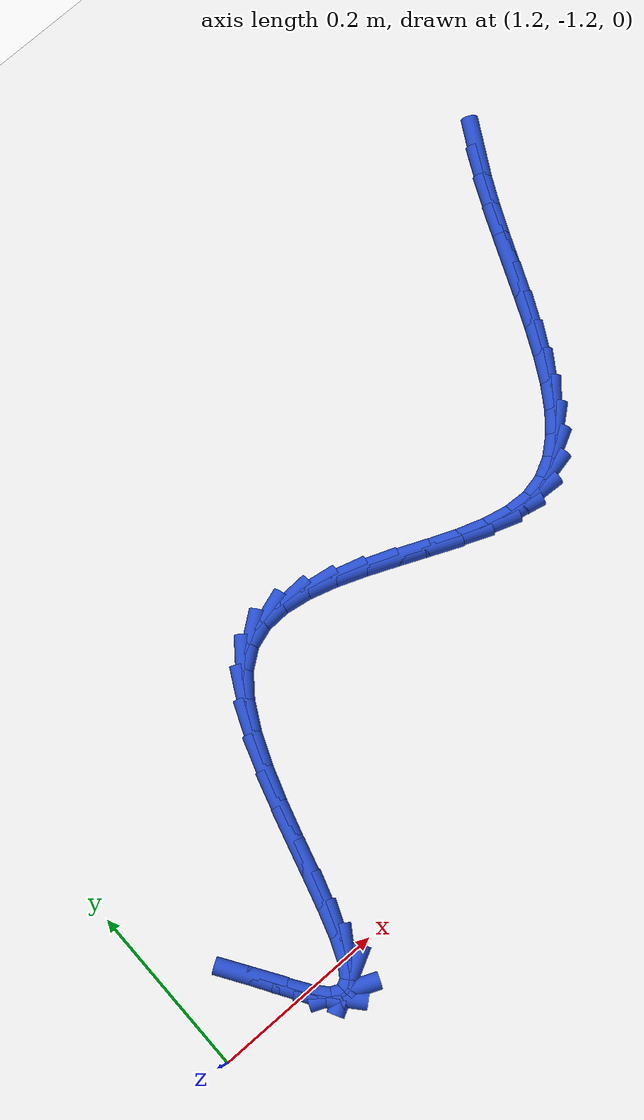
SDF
<sdf version="1.6">
 <world name="default">
  <model name="ground_plane">
   <static>1</static>
   <link name="link">
    <collision name="collision">
     <geometry><plane><normal>0 0 1</normal><size>100 100</size></plane></geometry>
     <surface><friction><ode><mu>100</mu><mu2>50</mu2></ode></friction></surface>
    </collision>
    <visual name="visual">
     <cast_shadows>0</cast_shadows>
     <geometry><plane><normal>0 0 1</normal><size>100 100</size></plane></geometry>
     <material>
      <script><uri>file://media/materials/scripts/gazebo.material</uri><name>Gazebo/WhiteGlow</name></script>
     </material>
    </visual>
   </link>
  </model>
  <model name="line">
   <link name="link_136">
    <pose>2.0787894992408216 -0.6108405569215617 0.01 0 1.57 1.0655286409629405</pose>
    <collision name="collision">
     <geometry><cylinder><radius>0.01</radius><length>0.08</length></cylinder></geometry>
    </collision>
    <visual name="visual">
     <material>
      <script><name>Gazebo/Blue</name><uri>file://media/materials/scripts/gazebo.material</uri></script>
     </material>
     <geometry><cylinder><radius>0.01</radius><length>0.08</length></cylinder></geometry>
    </visual>
   </link>
   <link name="link_137">
    <pose>2.062147831022804 -0.6409251707788344 0.01 0 1.57 1.1147313853682053</pose>
    <collision name="collision">
     <geometry><cylinder><radius>0.01</radius><length>0.08</length></cylinder></geometry>
    </collision>
    <visual name="visual">
     <material>
      <script><name>Gazebo/Blue</name><uri>file://media/materials/scripts/gazebo.material</uri></script>
     </material>
     <geometry><cylinder><radius>0.01</radius><length>0.08</length></cylinder></geometry>
    </visual>
   </link>
   <link name="link_138">
    <pose>2.046391463369008 -0.6730444933009648 0.01 0 1.57 1.1517351304528312</pose>
    <collision name="collision">
     <geometry><cylinder><radius>0.01</radius><length>0.08</length></cylinder></geometry>
    </collision>
    <visual name="visual">
     <material>
      <script><name>Gazebo/Blue</name><uri>file://media/materials/scripts/gazebo.material</uri></script>
     </material>
     <geometry><cylinder><radius>0.01</radius><length>0.08</length></cylinder></geometry>
    </visual>
   </link>
   <link name="link_139">
    <pose>2.0314053013502265 -0.7066874683574484 0.01 0 1.57 1.170623632182891</pose>
    <collision name="collision">
     <geometry><cylinder><radius>0.01</radius><length>0.08</length></cylinder></geometry>
    </collision>
    <visual name="visual">
     <material>
      <script><name>Gazebo/Blue</name><uri>file://media/materials/scripts/gazebo.material</uri></script>
     </material>
     <geometry><cylinder><radius>0.01</radius><length>0.08</length></cylinder></geometry>
    </visual>
   </link>
   <link name="link_140">
    <pose>2.0168631249725815 -0.7410663961493406 0.01 0 1.57 1.1729906849140792</pose>
    <collision name="collision">
     <geometry><cylinder><radius>0.01</radius><length>0.08</length></cylinder></geometry>
    </collision>
    <visual name="visual">
     <material>
      <script><name>Gazebo/Blue</name><uri>file://media/materials/scripts/gazebo.material</uri></script>
     </material>
     <geometry><cylinder><radius>0.01</radius><length>0.08</length></cylinder></geometry>
    </visual>
   </link>
   <link name="link_141">
    <pose>2.002438598368196 -0.7753934250444298 0.01 0 1.57 1.1588238868954397</pose>
    <collision name="collision">
     <geometry><cylinder><radius>0.01</radius><length>0.08</length></cylinder></geometry>
    </collision>
    <visual name="visual">
     <material>
      <script><name>Gazebo/Blue</name><uri>file://media/materials/scripts/gazebo.material</uri></script>
     </material>
     <geometry><cylinder><radius>0.01</radius><length>0.08</length></cylinder></geometry>
    </visual>
   </link>
   <link name="link_142">
    <pose>1.9878053856691917 -0.8088807034105067 0.01 0 1.57 1.12645489366024</pose>
    <collision name="collision">
     <geometry><cylinder><radius>0.01</radius><length>0.08</length></cylinder></geometry>
    </collision>
    <visual name="visual">
     <material>
      <script><name>Gazebo/Blue</name><uri>file://media/materials/scripts/gazebo.material</uri></script>
     </material>
     <geometry><cylinder><radius>0.01</radius><length>0.08</length></cylinder></geometry>
    </visual>
   </link>
   <link name="link_143">
    <pose>1.9726371510076925 -0.8407403796153622 0.01 0 1.57 1.0722585698978082</pose>
    <collision name="collision">
     <geometry><cylinder><radius>0.01</radius><length>0.08</length></cylinder></geometry>
    </collision>
    <visual name="visual">
     <material>
      <script><name>Gazebo/Blue</name><uri>file://media/materials/scripts/gazebo.material</uri></script>
     </material>
     <geometry><cylinder><radius>0.01</radius><length>0.08</length></cylinder></geometry>
    </visual>
   </link>
   <link name="link_144">
    <pose>1.9566075585158202 -0.8701846020267858 0.01 0 1.57 0.9901282950944299</pose>
    <collision name="collision">
     <geometry><cylinder><radius>0.01</radius><length>0.08</length></cylinder></geometry>
    </collision>
    <visual name="visual">
     <material>
      <script><name>Gazebo/Blue</name><uri>file://media/materials/scripts/gazebo.material</uri></script>
     </material>
     <geometry><cylinder><radius>0.01</radius><length>0.08</length></cylinder></geometry>
    </visual>
   </link>
   <link name="link_145">
    <pose>1.939390272325699 -0.8964255190125686 0.01 0 1.57 0.8710434805636414</pose>
    <collision name="collision">
     <geometry><cylinder><radius>0.01</radius><length>0.08</length></cylinder></geometry>
    </collision>
    <visual name="visual">
     <material>
      <script><name>Gazebo/Blue</name><uri>file://media/materials/scripts/gazebo.material</uri></script>
     </material>
     <geometry><cylinder><radius>0.01</radius><length>0.08</length></cylinder></geometry>
    </visual>
   </link>
   <link name="link_146">
    <pose>1.9206589565694503 -0.9186752789405002 0.01 0 1.57 0.7040655777040927</pose>
    <collision name="collision">
     <geometry><cylinder><radius>0.01</radius><length>0.08</length></cylinder></geometry>
    </collision>
    <visual name="visual">
     <material>
      <script><name>Gazebo/Blue</name><uri>file://media/materials/scripts/gazebo.material</uri></script>
     </material>
     <geometry><cylinder><radius>0.01</radius><length>0.08</length></cylinder></geometry>
    </visual>
   </link>
   <link name="link_147">
    <pose>1.9000872753791969 -0.9361460301783712 0.01 0 1.57 0.4822823829458967</pose>
    <collision name="collision">
     <geometry><cylinder><radius>0.01</radius><length>0.08</length></cylinder></geometry>
    </collision>
    <visual name="visual">
     <material>
      <script><name>Gazebo/Blue</name><uri>file://media/materials/scripts/gazebo.material</uri></script>
     </material>
     <geometry><cylinder><radius>0.01</radius><length>0.08</length></cylinder></geometry>
    </visual>
   </link>
   <link name="link_148">
    <pose>1.8773488928870625 -0.948049921093971 0.01 0 1.57 0.2164890102528162</pose>
    <collision name="collision">
     <geometry><cylinder><radius>0.01</radius><length>0.08</length></cylinder></geometry>
    </collision>
    <visual name="visual">
     <material>
      <script><name>Gazebo/Blue</name><uri>file://media/materials/scripts/gazebo.material</uri></script>
     </material>
     <geometry><cylinder><radius>0.01</radius><length>0.08</length></cylinder></geometry>
    </visual>
   </link>
   <link name="link_149">
    <pose>1.8521175127949647 -0.9535992033325917 0.01 0 1.57 -0.04096147280496312</pose>
    <collision name="collision">
     <geometry><cylinder><radius>0.01</radius><length>0.08</length></cylinder></geometry>
    </collision>
    <visual name="visual">
     <material>
      <script><name>Gazebo/Blue</name><uri>file://media/materials/scripts/gazebo.material</uri></script>
     </material>
     <geometry><cylinder><radius>0.01</radius><length>0.08</length></cylinder></geometry>
    </visual>
   </link>
   <link name="link_150">
    <pose>1.824239447084865 -0.9524566376156506 0.01 0 1.57 -0.218581777469119</pose>
    <collision name="collision">
     <geometry><cylinder><radius>0.01</radius><length>0.08</length></cylinder></geometry>
    </collision>
    <visual name="visual">
     <material>
      <script><name>Gazebo/Blue</name><uri>file://media/materials/scripts/gazebo.material</uri></script>
     </material>
     <geometry><cylinder><radius>0.01</radius><length>0.08</length></cylinder></geometry>
    </visual>
   </link>
   <link name="link_151">
    <pose>1.7941293065921071 -0.9457682494959878 0.01 0 1.57 -0.3268277697426285</pose>
    <collision name="collision">
     <geometry><cylinder><radius>0.01</radius><length>0.08</length></cylinder></geometry>
    </collision>
    <visual name="visual">
     <material>
      <script><name>Gazebo/Blue</name><uri>file://media/materials/scripts/gazebo.material</uri></script>
     </material>
     <geometry><cylinder><radius>0.01</radius><length>0.08</length></cylinder></geometry>
    </visual>
   </link>
   <link name="link_152">
    <pose>1.762318490188261 -0.934984882292367 0.01 0 1.57 -0.38664603583846685</pose>
    <collision name="collision">
     <geometry><cylinder><radius>0.01</radius><length>0.08</length></cylinder></geometry>
    </collision>
    <visual name="visual">
     <material>
      <script><name>Gazebo/Blue</name><uri>file://media/materials/scripts/gazebo.material</uri></script>
     </material>
     <geometry><cylinder><radius>0.01</radius><length>0.08</length></cylinder></geometry>
    </visual>
   </link>
   <link name="link_153">
    <pose>1.7293383967448963 -0.9215573793235503 0.01 0 1.57 -0.4102345584589909</pose>
    <collision name="collision">
     <geometry><cylinder><radius>0.01</radius><length>0.08</length></cylinder></geometry>
    </collision>
    <visual name="visual">
     <material>
      <script><name>Gazebo/Blue</name><uri>file://media/materials/scripts/gazebo.material</uri></script>
     </material>
     <geometry><cylinder><radius>0.01</radius><length>0.08</length></cylinder></geometry>
    </visual>
   </link>
   <link name="link_154">
    <pose>1.6957204251335818 -0.9069365839083006 0.01 0 1.57 -0.40263273112197173</pose>
    <collision name="collision">
     <geometry><cylinder><radius>0.01</radius><length>0.08</length></cylinder></geometry>
    </collision>
    <visual name="visual">
     <material>
      <script><name>Gazebo/Blue</name><uri>file://media/materials/scripts/gazebo.material</uri></script>
     </material>
     <geometry><cylinder><radius>0.01</radius><length>0.08</length></cylinder></geometry>
    </visual>
   </link>
   <link name="link_155">
    <pose>1.6619959742258867 -0.8925733393653804 0.01 0 1.57 -0.3631739973338399</pose>
    <collision name="collision">
     <geometry><cylinder><radius>0.01</radius><length>0.08</length></cylinder></geometry>
    </collision>
    <visual name="visual">
     <material>
      <script><name>Gazebo/Blue</name><uri>file://media/materials/scripts/gazebo.material</uri></script>
     </material>
     <geometry><cylinder><radius>0.01</radius><length>0.08</length></cylinder></geometry>
    </visual>
   </link>
   <link name="link_156">
    <pose>1.6286964428933834 -0.879918489013554 0.01 0 1.57 -0.28556485219659994</pose>
    <collision name="collision">
     <geometry><cylinder><radius>0.01</radius><length>0.08</length></cylinder></geometry>
    </collision>
    <visual name="visual">
     <material>
      <script><name>Gazebo/Blue</name><uri>file://media/materials/scripts/gazebo.material</uri></script>
     </material>
     <geometry><cylinder><radius>0.01</radius><length>0.08</length></cylinder></geometry>
    </visual>
   </link>
   <link name="link_157">
    <pose>1.5963532300076388 -0.8704228761715825 0.01 0 1.57 -0.1570322594020541</pose>
    <collision name="collision">
     <geometry><cylinder><radius>0.01</radius><length>0.08</length></cylinder></geometry>
    </collision>
    <visual name="visual">
     <material>
      <script><name>Gazebo/Blue</name><uri>file://media/materials/scripts/gazebo.material</uri></script>
     </material>
     <geometry><cylinder><radius>0.01</radius><length>0.08</length></cylinder></geometry>
    </visual>
   </link>
   <link name="link_158">
    <pose>1.5654977344402232 -0.8655373441582294 0.01 0 1.57 0.040738187682749505</pose>
    <collision name="collision">
     <geometry><cylinder><radius>0.01</radius><length>0.08</length></cylinder></geometry>
    </collision>
    <visual name="visual">
     <material>
      <script><name>Gazebo/Blue</name><uri>file://media/materials/scripts/gazebo.material</uri></script>
     </material>
     <geometry><cylinder><radius>0.01</radius><length>0.08</length></cylinder></geometry>
    </visual>
   </link>
   <link name="link_159">
    <pose>1.5366613550627064 -0.8667127362922574 0.01 0 1.57 0.3191874650321774</pose>
    <collision name="collision">
     <geometry><cylinder><radius>0.01</radius><length>0.08</length></cylinder></geometry>
    </collision>
    <visual name="visual">
     <material>
      <script><name>Gazebo/Blue</name><uri>file://media/materials/scripts/gazebo.material</uri></script>
     </material>
     <geometry><cylinder><radius>0.01</radius><length>0.08</length></cylinder></geometry>
    </visual>
   </link>
   <link name="link_160">
    <pose>1.5103754907466576 -0.8753998958924294 0.01 0 1.57 0.6461919423775032</pose>
    <collision name="collision">
     <geometry><cylinder><radius>0.01</radius><length>0.08</length></cylinder></geometry>
    </collision>
    <visual name="visual">
     <material>
      <script><name>Gazebo/Blue</name><uri>file://media/materials/scripts/gazebo.material</uri></script>
     </material>
     <geometry><cylinder><radius>0.01</radius><length>0.08</length></cylinder></geometry>
    </visual>
   </link>
   <link name="link_161">
    <pose>1.4871368828816476 -0.8929267546490982 0.01 0 1.57 0.9081546072924416</pose>
    <collision name="collision">
     <geometry><cylinder><radius>0.01</radius><length>0.08</length></cylinder></geometry>
    </collision>
    <visual name="visual">
     <material>
      <script><name>Gazebo/Blue</name><uri>file://media/materials/scripts/gazebo.material</uri></script>
     </material>
     <geometry><cylinder><radius>0.01</radius><length>0.08</length></cylinder></geometry>
    </visual>
   </link>
   <link name="link_162">
    <pose>1.4669335262580045 -0.9188169910479876 0.01 0 1.57 1.0740508527025323</pose>
    <collision name="collision">
     <geometry><cylinder><radius>0.01</radius><length>0.08</length></cylinder></geometry>
    </collision>
    <visual name="visual">
     <material>
      <script><name>Gazebo/Blue</name><uri>file://media/materials/scripts/gazebo.material</uri></script>
     </material>
     <geometry><cylinder><radius>0.01</radius><length>0.08</length></cylinder></geometry>
    </visual>
   </link>
   <link name="link_163">
    <pose>1.4493667499611043 -0.9512229862760896 0.01 0 1.57 1.178186737990009</pose>
    <collision name="collision">
     <geometry><cylinder><radius>0.01</radius><length>0.08</length></cylinder></geometry>
    </collision>
    <visual name="visual">
     <material>
      <script><name>Gazebo/Blue</name><uri>file://media/materials/scripts/gazebo.material</uri></script>
     </material>
     <geometry><cylinder><radius>0.01</radius><length>0.08</length></cylinder></geometry>
    </visual>
   </link>
   <link name="link_164">
    <pose>1.4340282194858045 -0.9882628499121193 0.01 0 1.57 1.2432967799028332</pose>
    <collision name="collision">
     <geometry><cylinder><radius>0.01</radius><length>0.08</length></cylinder></geometry>
    </collision>
    <visual name="visual">
     <material>
      <script><name>Gazebo/Blue</name><uri>file://media/materials/scripts/gazebo.material</uri></script>
     </material>
     <geometry><cylinder><radius>0.01</radius><length>0.08</length></cylinder></geometry>
    </visual>
   </link>
   <link name="link_165">
    <pose>1.4205096003269622 -1.028054691534791 0.01 0 1.57 1.2814060919413606</pose>
    <collision name="collision">
     <geometry><cylinder><radius>0.01</radius><length>0.08</length></cylinder></geometry>
    </collision>
    <visual name="visual">
     <material>
      <script><name>Gazebo/Blue</name><uri>file://media/materials/scripts/gazebo.material</uri></script>
     </material>
     <geometry><cylinder><radius>0.01</radius><length>0.08</length></cylinder></geometry>
    </visual>
   </link>
   <link name="link_166">
    <pose>1.4084025579794341 -1.0687166207228187 0.01 0 1.57 1.2977463537881087</pose>
    <collision name="collision">
     <geometry><cylinder><radius>0.01</radius><length>0.08</length></cylinder></geometry>
    </collision>
    <visual name="visual">
     <material>
      <script><name>Gazebo/Blue</name><uri>file://media/materials/scripts/gazebo.material</uri></script>
     </material>
     <geometry><cylinder><radius>0.01</radius><length>0.08</length></cylinder></geometry>
    </visual>
   </link>
   <link name="link_167">
    <pose>1.3972987579380776 -1.108366747054917 0.01 0 1.57 1.2923192430748731</pose>
    <collision name="collision">
     <geometry><cylinder><radius>0.01</radius><length>0.08</length></cylinder></geometry>
    </collision>
    <visual name="visual">
     <material>
      <script><name>Gazebo/Blue</name><uri>file://media/materials/scripts/gazebo.material</uri></script>
     </material>
     <geometry><cylinder><radius>0.01</radius><length>0.08</length></cylinder></geometry>
    </visual>
   </link>
   <link name="link_168">
    <pose>1.3867898656977498 -1.1451231801097996 0.01 0 1.57 1.2585866657051392</pose>
    <collision name="collision">
     <geometry><cylinder><radius>0.01</radius><length>0.08</length></cylinder></geometry>
    </collision>
    <visual name="visual">
     <material>
      <script><name>Gazebo/Blue</name><uri>file://media/materials/scripts/gazebo.material</uri></script>
     </material>
     <geometry><cylinder><radius>0.01</radius><length>0.08</length></cylinder></geometry>
    </visual>
   </link>
   <link name="link_169">
    <pose>1.3764675467533074 -1.1771040294661812 0.01 0 1.57 1.1762517413464573</pose>
    <collision name="collision">
     <geometry><cylinder><radius>0.01</radius><length>0.08</length></cylinder></geometry>
    </collision>
    <visual name="visual">
     <material>
      <script><name>Gazebo/Blue</name><uri>file://media/materials/scripts/gazebo.material</uri></script>
     </material>
     <geometry><cylinder><radius>0.01</radius><length>0.08</length></cylinder></geometry>
    </visual>
   </link>
   <link name="link_170">
    <pose>1.3659234665996072 -1.2024274047027763 0.01 0 1.57 0.9834194940949305</pose>
    <collision name="collision">
     <geometry><cylinder><radius>0.01</radius><length>0.08</length></cylinder></geometry>
    </collision>
    <visual name="visual">
     <material>
      <script><name>Gazebo/Blue</name><uri>file://media/materials/scripts/gazebo.material</uri></script>
     </material>
     <geometry><cylinder><radius>0.01</radius><length>0.08</length></cylinder></geometry>
    </visual>
   </link>
   <link name="link_171">
    <pose>1.3547492907315075 -1.2192114153982978 0.01 0 1.57 0.48030534812005077</pose>
    <collision name="collision">
     <geometry><cylinder><radius>0.01</radius><length>0.08</length></cylinder></geometry>
    </collision>
    <visual name="visual">
     <material>
      <script><name>Gazebo/Blue</name><uri>file://media/materials/scripts/gazebo.material</uri></script>
     </material>
     <geometry><cylinder><radius>0.01</radius><length>0.08</length></cylinder></geometry>
    </visual>
   </link>
   <link name="link_172">
    <pose>1.3425366846438647 -1.2255741711314607 0.01 0 1.57 -0.40363469453988143</pose>
    <collision name="collision">
     <geometry><cylinder><radius>0.01</radius><length>0.08</length></cylinder></geometry>
    </collision>
    <visual name="visual">
     <material>
      <script><name>Gazebo/Blue</name><uri>file://media/materials/scripts/gazebo.material</uri></script>
     </material>
     <geometry><cylinder><radius>0.01</radius><length>0.08</length></cylinder></geometry>
    </visual>
   </link>
   <link name="link_173">
    <pose>1.3288853967292285 -1.2197439211682746 0.01 0 1.57 -0.8454592594226162</pose>
    <collision name="collision">
     <geometry><cylinder><radius>0.01</radius><length>0.08</length></cylinder></geometry>
    </collision>
    <visual name="visual">
     <material>
      <script><name>Gazebo/Blue</name><uri>file://media/materials/scripts/gazebo.material</uri></script>
     </material>
     <geometry><cylinder><radius>0.01</radius><length>0.08</length></cylinder></geometry>
    </visual>
   </link>
   <link name="link_174">
    <pose>1.3135810111476636 -1.2024811617607662 0.01 0 1.57 -0.981412511410069</pose>
    <collision name="collision">
     <geometry><cylinder><radius>0.01</radius><length>0.08</length></cylinder></geometry>
    </collision>
    <visual name="visual">
     <material>
      <script><name>Gazebo/Blue</name><uri>file://media/materials/scripts/gazebo.material</uri></script>
     </material>
     <geometry><cylinder><radius>0.01</radius><length>0.08</length></cylinder></geometry>
    </visual>
   </link>
   <link name="link_175">
    <pose>1.2965949084578101 -1.177078099695519 0.01 0 1.57 -1.0157798368267803</pose>
    <collision name="collision">
     <geometry><cylinder><radius>0.01</radius><length>0.08</length></cylinder></geometry>
    </collision>
    <visual name="visual">
     <material>
      <script><name>Gazebo/Blue</name><uri>file://media/materials/scripts/gazebo.material</uri></script>
     </material>
     <geometry><cylinder><radius>0.01</radius><length>0.08</length></cylinder></geometry>
    </visual>
   </link>
   <link name="link_176">
    <pose>1.2779065442422162 -1.1469369741561168 0.01 0 1.57 -0.9955128052372865</pose>
    <collision name="collision">
     <geometry><cylinder><radius>0.01</radius><length>0.08</length></cylinder></geometry>
    </collision>
    <visual name="visual">
     <material>
      <script><name>Gazebo/Blue</name><uri>file://media/materials/scripts/gazebo.material</uri></script>
     </material>
     <geometry><cylinder><radius>0.01</radius><length>0.08</length></cylinder></geometry>
    </visual>
   </link>
  </model>
 </world>
</sdf>
